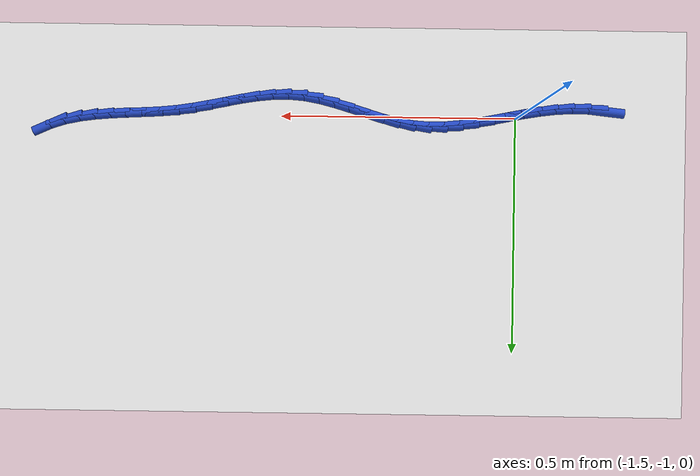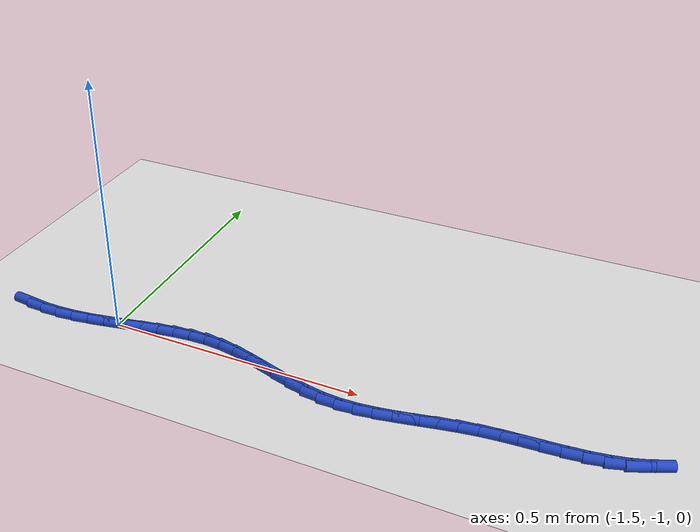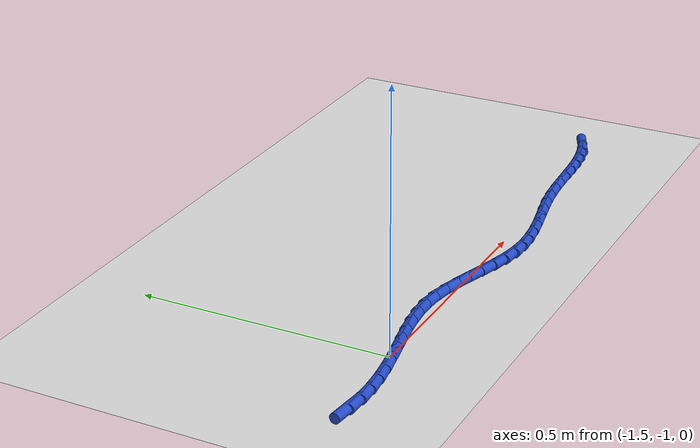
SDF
<sdf version="1.6">
 <world name="default">
  <model name="ground_plane">
   <static>1</static>
   <link name="link">
    <collision name="collision">
     <geometry><plane><normal>0 0 1</normal><size>100 100</size></plane></geometry>
     <surface><friction><ode><mu>100</mu><mu2>50</mu2></ode></friction></surface>
    </collision>
    <visual name="visual">
     <cast_shadows>0</cast_shadows>
     <geometry><plane><normal>0 0 1</normal><size>100 100</size></plane></geometry>
     <material>
      <script><uri>file://media/materials/scripts/gazebo.material</uri><name>Gazebo/WhiteGlow</name></script>
     </material>
    </visual>
   </link>
  </model>
  <model name="line">
   <link name="link_142">
    <pose>-1.6898096233440152 -1.0182245238949386 0.01 0 1.57 -0.10727650862370637</pose>
    <collision name="collision">
     <geometry><cylinder><radius>0.01</radius><length>0.08</length></cylinder></geometry>
    </collision>
    <visual name="visual">
     <material>
      <script><name>Gazebo/Blue</name><uri>file://media/materials/scripts/gazebo.material</uri></script>
     </material>
     <geometry><cylinder><radius>0.01</radius><length>0.08</length></cylinder></geometry>
    </visual>
   </link>
   <link name="link_143">
    <pose>-1.6541699496373585 -1.0220625579845268 0.01 0 1.57 -0.013169034413674612</pose>
    <collision name="collision">
     <geometry><cylinder><radius>0.01</radius><length>0.08</length></cylinder></geometry>
    </collision>
    <visual name="visual">
     <material>
      <script><name>Gazebo/Blue</name><uri>file://media/materials/scripts/gazebo.material</uri></script>
     </material>
     <geometry><cylinder><radius>0.01</radius><length>0.08</length></cylinder></geometry>
    </visual>
   </link>
   <link name="link_144">
    <pose>-1.6189537910582077 -1.0225263475997508 0.01 0 1.57 0.06523631978269057</pose>
    <collision name="collision">
     <geometry><cylinder><radius>0.01</radius><length>0.08</length></cylinder></geometry>
    </collision>
    <visual name="visual">
     <material>
      <script><name>Gazebo/Blue</name><uri>file://media/materials/scripts/gazebo.material</uri></script>
     </material>
     <geometry><cylinder><radius>0.01</radius><length>0.08</length></cylinder></geometry>
    </visual>
   </link>
   <link name="link_145">
    <pose>-1.584130871683002 -1.0202514003565935 0.01 0 1.57 0.12596137931234386</pose>
    <collision name="collision">
     <geometry><cylinder><radius>0.01</radius><length>0.08</length></cylinder></geometry>
    </collision>
    <visual name="visual">
     <material>
      <script><name>Gazebo/Blue</name><uri>file://media/materials/scripts/gazebo.material</uri></script>
     </material>
     <geometry><cylinder><radius>0.01</radius><length>0.08</length></cylinder></geometry>
    </visual>
   </link>
   <link name="link_146">
    <pose>-1.5496607621265686 -1.0158863878686017 0.01 0 1.57 0.16837855283076023</pose>
    <collision name="collision">
     <geometry><cylinder><radius>0.01</radius><length>0.08</length></cylinder></geometry>
    </collision>
    <visual name="visual">
     <material>
      <script><name>Gazebo/Blue</name><uri>file://media/materials/scripts/gazebo.material</uri></script>
     </material>
     <geometry><cylinder><radius>0.01</radius><length>0.08</length></cylinder></geometry>
    </visual>
   </link>
   <link name="link_147">
    <pose>-1.5155030330037353 -1.010079981749323 0.01 0 1.57 0.19233880917072718</pose>
    <collision name="collision">
     <geometry><cylinder><radius>0.01</radius><length>0.08</length></cylinder></geometry>
    </collision>
    <visual name="visual">
     <material>
      <script><name>Gazebo/Blue</name><uri>file://media/materials/scripts/gazebo.material</uri></script>
     </material>
     <geometry><cylinder><radius>0.01</radius><length>0.08</length></cylinder></geometry>
    </visual>
   </link>
   <link name="link_148">
    <pose>-1.481617254929327 -1.0034808536123037 0.01 0 1.57 0.19774773813358074</pose>
    <collision name="collision">
     <geometry><cylinder><radius>0.01</radius><length>0.08</length></cylinder></geometry>
    </collision>
    <visual name="visual">
     <material>
      <script><name>Gazebo/Blue</name><uri>file://media/materials/scripts/gazebo.material</uri></script>
     </material>
     <geometry><cylinder><radius>0.01</radius><length>0.08</length></cylinder></geometry>
    </visual>
   </link>
   <link name="link_149">
    <pose>-1.4479629985181721 -0.9967376750710919 0.01 0 1.57 0.18431465688603907</pose>
    <collision name="collision">
     <geometry><cylinder><radius>0.01</radius><length>0.08</length></cylinder></geometry>
    </collision>
    <visual name="visual">
     <material>
      <script><name>Gazebo/Blue</name><uri>file://media/materials/scripts/gazebo.material</uri></script>
     </material>
     <geometry><cylinder><radius>0.01</radius><length>0.08</length></cylinder></geometry>
    </visual>
   </link>
   <link name="link_150">
    <pose>-1.4144998343850972 -0.9904991177392347 0.01 0 1.57 0.15148388363500076</pose>
    <collision name="collision">
     <geometry><cylinder><radius>0.01</radius><length>0.08</length></cylinder></geometry>
    </collision>
    <visual name="visual">
     <material>
      <script><name>Gazebo/Blue</name><uri>file://media/materials/scripts/gazebo.material</uri></script>
     </material>
     <geometry><cylinder><radius>0.01</radius><length>0.08</length></cylinder></geometry>
    </visual>
   </link>
   <link name="link_151">
    <pose>-1.3811873331449287 -0.9854138532302789 0.01 0 1.57 0.09856736923654413</pose>
    <collision name="collision">
     <geometry><cylinder><radius>0.01</radius><length>0.08</length></cylinder></geometry>
    </collision>
    <visual name="visual">
     <material>
      <script><name>Gazebo/Blue</name><uri>file://media/materials/scripts/gazebo.material</uri></script>
     </material>
     <geometry><cylinder><radius>0.01</radius><length>0.08</length></cylinder></geometry>
    </visual>
   </link>
   <link name="link_152">
    <pose>-1.3479850654124952 -0.9821305531577721 0.01 0 1.57 0.025126075718644062</pose>
    <collision name="collision">
     <geometry><cylinder><radius>0.01</radius><length>0.08</length></cylinder></geometry>
    </collision>
    <visual name="visual">
     <material>
      <script><name>Gazebo/Blue</name><uri>file://media/materials/scripts/gazebo.material</uri></script>
     </material>
     <geometry><cylinder><radius>0.01</radius><length>0.08</length></cylinder></geometry>
    </visual>
   </link>
   <link name="link_153">
    <pose>-1.3148526018026223 -0.9812978891352615 0.01 0 1.57 -0.06835558102542262</pose>
    <collision name="collision">
     <geometry><cylinder><radius>0.01</radius><length>0.08</length></cylinder></geometry>
    </collision>
    <visual name="visual">
     <material>
      <script><name>Gazebo/Blue</name><uri>file://media/materials/scripts/gazebo.material</uri></script>
     </material>
     <geometry><cylinder><radius>0.01</radius><length>0.08</length></cylinder></geometry>
    </visual>
   </link>
   <link name="link_154">
    <pose>-1.2817495205431764 -0.9835642003572339 0.01 0 1.57 -0.1688104586799479</pose>
    <collision name="collision">
     <geometry><cylinder><radius>0.01</radius><length>0.08</length></cylinder></geometry>
    </collision>
    <visual name="visual">
     <material>
      <script><name>Gazebo/Blue</name><uri>file://media/materials/scripts/gazebo.material</uri></script>
     </material>
     <geometry><cylinder><radius>0.01</radius><length>0.08</length></cylinder></geometry>
    </visual>
   </link>
   <link name="link_155">
    <pose>-1.2486439045739695 -0.9892064725614268 0.01 0 1.57 -0.24309579793121291</pose>
    <collision name="collision">
     <geometry><cylinder><radius>0.01</radius><length>0.08</length></cylinder></geometry>
    </collision>
    <visual name="visual">
     <material>
      <script><name>Gazebo/Blue</name><uri>file://media/materials/scripts/gazebo.material</uri></script>
     </material>
     <geometry><cylinder><radius>0.01</radius><length>0.08</length></cylinder></geometry>
    </visual>
   </link>
   <link name="link_156">
    <pose>-1.2155286308791435 -0.997419073505477 0.01 0 1.57 -0.28709803335811657</pose>
    <collision name="collision">
     <geometry><cylinder><radius>0.01</radius><length>0.08</length></cylinder></geometry>
    </collision>
    <visual name="visual">
     <material>
      <script><name>Gazebo/Blue</name><uri>file://media/materials/scripts/gazebo.material</uri></script>
     </material>
     <geometry><cylinder><radius>0.01</radius><length>0.08</length></cylinder></geometry>
    </visual>
   </link>
   <link name="link_157">
    <pose>-1.1824010701539185 -1.007200155583831 0.01 0 1.57 -0.3026289733148823</pose>
    <collision name="collision">
     <geometry><cylinder><radius>0.01</radius><length>0.08</length></cylinder></geometry>
    </collision>
    <visual name="visual">
     <material>
      <script><name>Gazebo/Blue</name><uri>file://media/materials/scripts/gazebo.material</uri></script>
     </material>
     <geometry><cylinder><radius>0.01</radius><length>0.08</length></cylinder></geometry>
    </visual>
   </link>
   <link name="link_158">
    <pose>-1.1492585930935175 -1.0175478711909358 0.01 0 1.57 -0.29047418830995586</pose>
    <collision name="collision">
     <geometry><cylinder><radius>0.01</radius><length>0.08</length></cylinder></geometry>
    </collision>
    <visual name="visual">
     <material>
      <script><name>Gazebo/Blue</name><uri>file://media/materials/scripts/gazebo.material</uri></script>
     </material>
     <geometry><cylinder><radius>0.01</radius><length>0.08</length></cylinder></geometry>
    </visual>
   </link>
   <link name="link_159">
    <pose>-1.1160985703931616 -1.0274603727212392 0.01 0 1.57 -0.2500889657409278</pose>
    <collision name="collision">
     <geometry><cylinder><radius>0.01</radius><length>0.08</length></cylinder></geometry>
    </collision>
    <visual name="visual">
     <material>
      <script><name>Gazebo/Blue</name><uri>file://media/materials/scripts/gazebo.material</uri></script>
     </material>
     <geometry><cylinder><radius>0.01</radius><length>0.08</length></cylinder></geometry>
    </visual>
   </link>
   <link name="link_160">
    <pose>-1.0829183727480727 -1.035935812569188 0.01 0 1.57 -0.17984245404225147</pose>
    <collision name="collision">
     <geometry><cylinder><radius>0.01</radius><length>0.08</length></cylinder></geometry>
    </collision>
    <visual name="visual">
     <material>
      <script><name>Gazebo/Blue</name><uri>file://media/materials/scripts/gazebo.material</uri></script>
     </material>
     <geometry><cylinder><radius>0.01</radius><length>0.08</length></cylinder></geometry>
    </visual>
   </link>
   <link name="link_161">
    <pose>-1.0497153708534723 -1.0419723431292298 0.01 0 1.57 -0.07926531167392616</pose>
    <collision name="collision">
     <geometry><cylinder><radius>0.01</radius><length>0.08</length></cylinder></geometry>
    </collision>
    <visual name="visual">
     <material>
      <script><name>Gazebo/Blue</name><uri>file://media/materials/scripts/gazebo.material</uri></script>
     </material>
     <geometry><cylinder><radius>0.01</radius><length>0.08</length></cylinder></geometry>
    </visual>
   </link>
   <link name="link_162">
    <pose>-1.0164857737724462 -1.0446118277670537 0.01 0 1.57 0.024895127614192606</pose>
    <collision name="collision">
     <geometry><cylinder><radius>0.01</radius><length>0.08</length></cylinder></geometry>
    </collision>
    <visual name="visual">
     <material>
      <script><name>Gazebo/Blue</name><uri>file://media/materials/scripts/gazebo.material</uri></script>
     </material>
     <geometry><cylinder><radius>0.01</radius><length>0.08</length></cylinder></geometry>
    </visual>
   </link>
   <link name="link_163">
    <pose>-0.9832022201810253 -1.0437830582310925 0.01 0 1.57 0.10570912062308004</pose>
    <collision name="collision">
     <geometry><cylinder><radius>0.01</radius><length>0.08</length></cylinder></geometry>
    </collision>
    <visual name="visual">
     <material>
      <script><name>Gazebo/Blue</name><uri>file://media/materials/scripts/gazebo.material</uri></script>
     </material>
     <geometry><cylinder><radius>0.01</radius><length>0.08</length></cylinder></geometry>
    </visual>
   </link>
   <link name="link_164">
    <pose>-0.9498154045715976 -1.0402405623622135 0.01 0 1.57 0.16167152609116822</pose>
    <collision name="collision">
     <geometry><cylinder><radius>0.01</radius><length>0.08</length></cylinder></geometry>
    </collision>
    <visual name="visual">
     <material>
      <script><name>Gazebo/Blue</name><uri>file://media/materials/scripts/gazebo.material</uri></script>
     </material>
     <geometry><cylinder><radius>0.01</radius><length>0.08</length></cylinder></geometry>
    </visual>
   </link>
   <link name="link_165">
    <pose>-0.9162751855662599 -1.0347703209039127 0.01 0 1.57 0.19349591019418297</pose>
    <collision name="collision">
     <geometry><cylinder><radius>0.01</radius><length>0.08</length></cylinder></geometry>
    </collision>
    <visual name="visual">
     <material>
      <script><name>Gazebo/Blue</name><uri>file://media/materials/scripts/gazebo.material</uri></script>
     </material>
     <geometry><cylinder><radius>0.01</radius><length>0.08</length></cylinder></geometry>
    </visual>
   </link>
   <link name="link_166">
    <pose>-0.8825314217871062 -1.0281583145996875 0.01 0 1.57 0.20215098110740845</pose>
    <collision name="collision">
     <geometry><cylinder><radius>0.01</radius><length>0.08</length></cylinder></geometry>
    </collision>
    <visual name="visual">
     <material>
      <script><name>Gazebo/Blue</name><uri>file://media/materials/scripts/gazebo.material</uri></script>
     </material>
     <geometry><cylinder><radius>0.01</radius><length>0.08</length></cylinder></geometry>
    </visual>
   </link>
   <link name="link_167">
    <pose>-0.848533971856231 -1.0211905241930337 0.01 0 1.57 0.18833451509896568</pose>
    <collision name="collision">
     <geometry><cylinder><radius>0.01</radius><length>0.08</length></cylinder></geometry>
    </collision>
    <visual name="visual">
     <material>
      <script><name>Gazebo/Blue</name><uri>file://media/materials/scripts/gazebo.material</uri></script>
     </material>
     <geometry><cylinder><radius>0.01</radius><length>0.08</length></cylinder></geometry>
    </visual>
   </link>
   <link name="link_168">
    <pose>-0.81423269439573 -1.0146529304274479 0.01 0 1.57 0.1523644264320244</pose>
    <collision name="collision">
     <geometry><cylinder><radius>0.01</radius><length>0.08</length></cylinder></geometry>
    </collision>
    <visual name="visual">
     <material>
      <script><name>Gazebo/Blue</name><uri>file://media/materials/scripts/gazebo.material</uri></script>
     </material>
     <geometry><cylinder><radius>0.01</radius><length>0.08</length></cylinder></geometry>
    </visual>
   </link>
   <link name="link_169">
    <pose>-0.7795774586789942 -1.009331462292411 0.01 0 1.57 0.10287381858321458</pose>
    <collision name="collision">
     <geometry><cylinder><radius>0.01</radius><length>0.08</length></cylinder></geometry>
    </collision>
    <visual name="visual">
     <material>
      <script><name>Gazebo/Blue</name><uri>file://media/materials/scripts/gazebo.material</uri></script>
     </material>
     <geometry><cylinder><radius>0.01</radius><length>0.08</length></cylinder></geometry>
    </visual>
   </link>
   <link name="link_170">
    <pose>-0.7445786014518196 -1.0057182409336876 0.01 0 1.57 0.06812691978502565</pose>
    <collision name="collision">
     <geometry><cylinder><radius>0.01</radius><length>0.08</length></cylinder></geometry>
    </collision>
    <visual name="visual">
     <material>
      <script><name>Gazebo/Blue</name><uri>file://media/materials/scripts/gazebo.material</uri></script>
     </material>
     <geometry><cylinder><radius>0.01</radius><length>0.08</length></cylinder></geometry>
    </visual>
   </link>
   <link name="link_171">
    <pose>-0.7094489990243977 -1.0033212598278436 0.01 0 1.57 0.05361399057534621</pose>
    <collision name="collision">
     <geometry><cylinder><radius>0.01</radius><length>0.08</length></cylinder></geometry>
    </collision>
    <visual name="visual">
     <material>
      <script><name>Gazebo/Blue</name><uri>file://media/materials/scripts/gazebo.material</uri></script>
     </material>
     <geometry><cylinder><radius>0.01</radius><length>0.08</length></cylinder></geometry>
    </visual>
   </link>
   <link name="link_172">
    <pose>-0.6744438860610452 -1.0014426957338776 0.01 0 1.57 0.05936546037449179</pose>
    <collision name="collision">
     <geometry><cylinder><radius>0.01</radius><length>0.08</length></cylinder></geometry>
    </collision>
    <visual name="visual">
     <material>
      <script><name>Gazebo/Blue</name><uri>file://media/materials/scripts/gazebo.material</uri></script>
     </material>
     <geometry><cylinder><radius>0.01</radius><length>0.08</length></cylinder></geometry>
    </visual>
   </link>
   <link name="link_173">
    <pose>-0.6398184972260804 -0.9993847254107892 0.01 0 1.57 0.08614002138966949</pose>
    <collision name="collision">
     <geometry><cylinder><radius>0.01</radius><length>0.08</length></cylinder></geometry>
    </collision>
    <visual name="visual">
     <material>
      <script><name>Gazebo/Blue</name><uri>file://media/materials/scripts/gazebo.material</uri></script>
     </material>
     <geometry><cylinder><radius>0.01</radius><length>0.08</length></cylinder></geometry>
    </visual>
   </link>
   <link name="link_174">
    <pose>-0.6058280671838212 -0.9964495256175774 0.01 0 1.57 0.1354263913263941</pose>
    <collision name="collision">
     <geometry><cylinder><radius>0.01</radius><length>0.08</length></cylinder></geometry>
    </collision>
    <visual name="visual">
     <material>
      <script><name>Gazebo/Blue</name><uri>file://media/materials/scripts/gazebo.material</uri></script>
     </material>
     <geometry><cylinder><radius>0.01</radius><length>0.08</length></cylinder></geometry>
    </visual>
   </link>
   <link name="link_175">
    <pose>-0.5727278305985858 -0.9919392731132417 0.01 0 1.57 0.2091677533136618</pose>
    <collision name="collision">
     <geometry><cylinder><radius>0.01</radius><length>0.08</length></cylinder></geometry>
    </collision>
    <visual name="visual">
     <material>
      <script><name>Gazebo/Blue</name><uri>file://media/materials/scripts/gazebo.material</uri></script>
     </material>
     <geometry><cylinder><radius>0.01</radius><length>0.08</length></cylinder></geometry>
    </visual>
   </link>
   <link name="link_176">
    <pose>-0.5407730221346916 -0.9851561446567813 0.01 0 1.57 0.30859032873322934</pose>
    <collision name="collision">
     <geometry><cylinder><radius>0.01</radius><length>0.08</length></cylinder></geometry>
    </collision>
    <visual name="visual">
     <material>
      <script><name>Gazebo/Blue</name><uri>file://media/materials/scripts/gazebo.material</uri></script>
     </material>
     <geometry><cylinder><radius>0.01</radius><length>0.08</length></cylinder></geometry>
    </visual>
   </link>
   <link name="link_177">
    <pose>-0.5102143379662955 -0.975414834081038 0.01 0 1.57 0.41984578523134697</pose>
    <collision name="collision">
     <geometry><cylinder><radius>0.01</radius><length>0.08</length></cylinder></geometry>
    </collision>
    <visual name="visual">
     <material>
      <script><name>Gazebo/Blue</name><uri>file://media/materials/scripts/gazebo.material</uri></script>
     </material>
     <geometry><cylinder><radius>0.01</radius><length>0.08</length></cylinder></geometry>
    </visual>
   </link>
  </model>
 </world>
</sdf>
